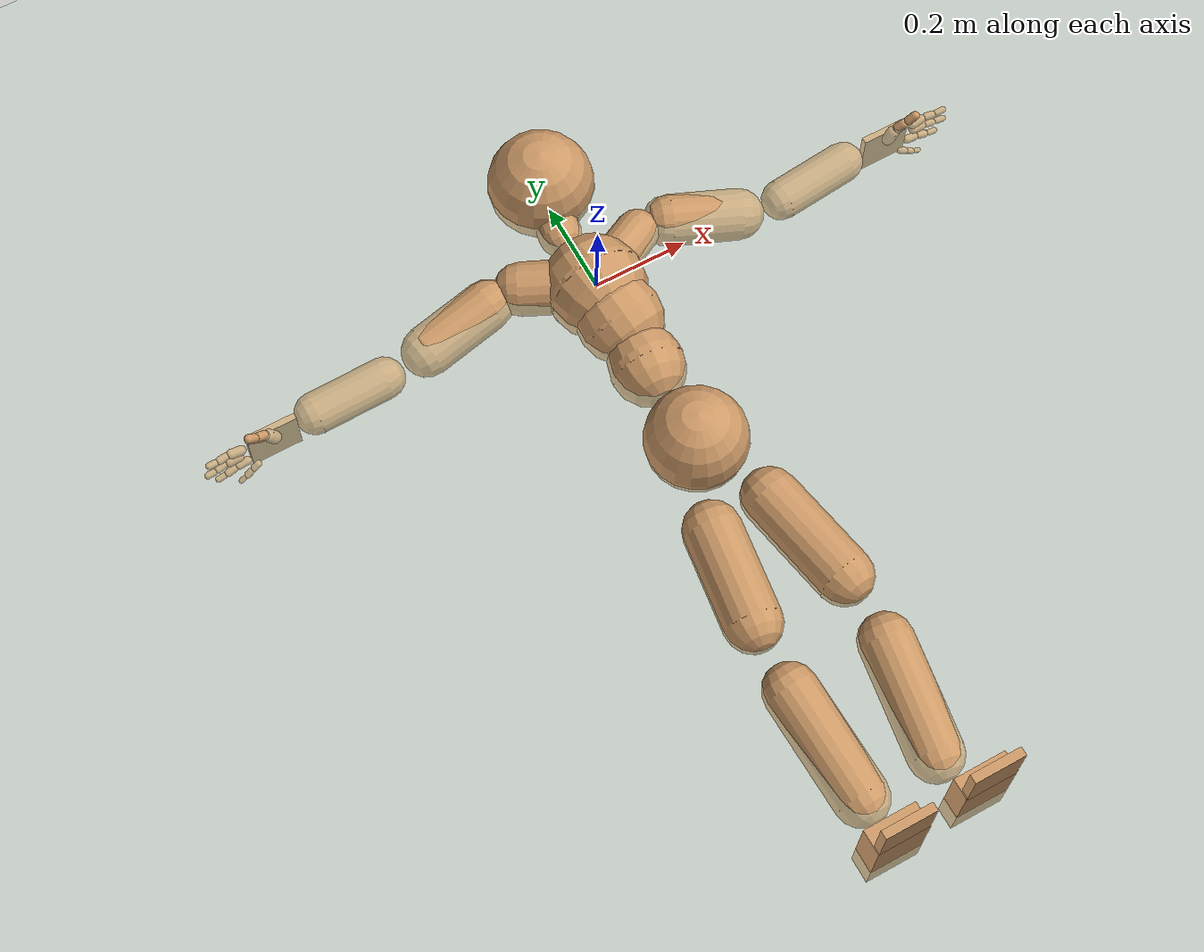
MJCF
<mujoco model="humanoid">
  <compiler coordinate="local"/>
  <default>
    <joint damping="0.0" armature="0.01" stiffness="0.0" limited="true"/>
    <geom conaffinity="1" condim="3" contype="7" margin="0.001" rgba="0.8 0.6 .4 1"/>
  </default>
  <asset>
    <texture type="skybox" builtin="gradient" rgb1=".4 .5 .6" rgb2="0 0 0" width="100" height="100"/>
    <texture builtin="flat" height="1278" mark="cross" markrgb="1 1 1" name="texgeom" random="0.01" rgb1="0.8 0.6 0.4" rgb2="0.8 0.6 0.4" type="cube" width="127"/>
    <texture builtin="checker" height="100" name="texplane" rgb1="0 0 0" rgb2="0.8 0.8 0.8" type="2d" width="100"/>
    <material name="MatPlane" reflectance="0.5" shininess="1" specular="1" texrepeat="60 60" texture="texplane"/>
    <material name="geom" texture="texgeom" texuniform="true"/>
  </asset>
  <worldbody>
    <light cutoff="100" diffuse="1 1 1" dir="-0 0 -1.3" directional="true" exponent="1" pos="0 0 1.3" specular=".1 .1 .1"/>
    <geom conaffinity="1" condim="3" name="floor" pos="0 0 0" rgba="0.8 0.9 0.8 1" size="100 100 .2" type="plane" material="MatPlane"/>
    <body name="Pelvis" pos="0.0014 -0.396 0.0108">
      <freejoint name="Pelvis"/>
      <geom type="sphere" contype="1" conaffinity="1" density="4629.6296296296305" size="0.1057" pos="0.0000 0.0000 0.0000" name="Pelvis"/>
      <body name="L_Hip" pos="0.0556 -0.0973 -0.0241">
        <joint name="L_Hip_x" type="hinge" pos="0 0 0" axis="1 0 0" stiffness="800" damping="80" armature="0.02" range="-90.0000 90.0000"/>
        <joint name="L_Hip_y" type="hinge" pos="0 0 0" axis="0 1 0" stiffness="800" damping="80" armature="0.02" range="-90.0000 90.0000"/>
        <joint name="L_Hip_z" type="hinge" pos="0 0 0" axis="0 0 1" stiffness="800" damping="80" armature="0.02" range="-90.0000 90.0000"/>
        <geom type="capsule" contype="1" conaffinity="1" density="2040.816327" fromto="0.0128 -0.0704 0.0010 0.0510 -0.2817 0.0041" size="0.0598" name="L_Hip"/>
        <body name="L_Knee" pos="0.0638 -0.3522 0.0051">
          <joint name="L_Knee_x" type="hinge" pos="0 0 0" axis="1 0 0" stiffness="800" damping="80" armature="0.02" range="-180.0000 180.0000"/>
          <joint name="L_Knee_y" type="hinge" pos="0 0 0" axis="0 1 0" stiffness="800" damping="80" armature="0.02" range="-5.6250 5.6250"/>
          <joint name="L_Knee_z" type="hinge" pos="0 0 0" axis="0 0 1" stiffness="800" damping="80" armature="0.02" range="-5.6250 5.6250"/>
          <geom type="capsule" contype="1" conaffinity="1" density="1234.567901" fromto="-0.0103 -0.0766 -0.0077 -0.0413 -0.3063 -0.0308" size="0.0558" name="L_Knee"/>
          <body name="L_Ankle" pos="-0.0517 -0.3828 -0.0385">
            <joint name="L_Ankle_x" type="hinge" pos="0 0 0" axis="1 0 0" stiffness="800" damping="80" armature="0.02" range="-90.0000 90.0000"/>
            <joint name="L_Ankle_y" type="hinge" pos="0 0 0" axis="0 1 0" stiffness="800" damping="80" armature="0.02" range="-90.0000 90.0000"/>
            <joint name="L_Ankle_z" type="hinge" pos="0 0 0" axis="0 0 1" stiffness="800" damping="80" armature="0.02" range="-90.0000 90.0000"/>
            <geom type="box" contype="1" conaffinity="1" density="1000.000127" pos="0.0225 -0.0286 0.0687" size="0.0546 0.0213 0.0973" quat="1.0000 0.0000 0.0000 0.0000" name="L_Ankle"/>
            <body name="L_Toe" pos="0.0451 -0.0573 0.1373">
              <joint name="L_Toe_x" type="hinge" pos="0 0 0" axis="1 0 0" stiffness="500" damping="50" armature="0.02" range="-90.0000 90.0000"/>
              <joint name="L_Toe_y" type="hinge" pos="0 0 0" axis="0 1 0" stiffness="500" damping="50" armature="0.02" range="-45.0000 45.0000"/>
              <joint name="L_Toe_z" type="hinge" pos="0 0 0" axis="0 0 1" stiffness="500" damping="50" armature="0.02" range="-45.0000 45.0000"/>
              <geom type="box" contype="1" conaffinity="1" density="999.999944" pos="-0.0225 0.0165 0.0697" size="0.0529 0.0092 0.0541" quat="1.0000 0.0000 0.0000 0.0000" name="L_Toe"/>
            </body>
          </body>
        </body>
      </body>
      <body name="R_Hip" pos="-0.0573 -0.1088 -0.0172">
        <joint name="R_Hip_x" type="hinge" pos="0 0 0" axis="1 0 0" stiffness="800" damping="80" armature="0.02" range="-90.0000 90.0000"/>
        <joint name="R_Hip_y" type="hinge" pos="0 0 0" axis="0 1 0" stiffness="800" damping="80" armature="0.02" range="-90.0000 90.0000"/>
        <joint name="R_Hip_z" type="hinge" pos="0 0 0" axis="0 0 1" stiffness="800" damping="80" armature="0.02" range="-90.0000 90.0000"/>
        <geom type="capsule" contype="1" conaffinity="1" density="2040.816327" fromto="-0.0093 -0.0671 -0.0006 -0.0374 -0.2686 -0.0023" size="0.0598" name="R_Hip"/>
        <body name="R_Knee" pos="-0.0467 -0.3357 -0.0029">
          <joint name="R_Knee_x" type="hinge" pos="0 0 0" axis="1 0 0" stiffness="800" damping="80" armature="0.02" range="-180.0000 180.0000"/>
          <joint name="R_Knee_y" type="hinge" pos="0 0 0" axis="0 1 0" stiffness="800" damping="80" armature="0.02" range="-5.6250 5.6250"/>
          <joint name="R_Knee_z" type="hinge" pos="0 0 0" axis="0 0 1" stiffness="800" damping="80" armature="0.02" range="-5.6250 5.6250"/>
          <geom type="capsule" contype="1" conaffinity="1" density="1234.567901" fromto="0.0042 -0.0789 -0.0074 0.0167 -0.3158 -0.0296" size="0.0555" name="R_Knee"/>
          <body name="R_Ankle" pos="0.0209 -0.3947 -0.037">
            <joint name="R_Ankle_x" type="hinge" pos="0 0 0" axis="1 0 0" stiffness="800" damping="80" armature="0.02" range="-90.0000 90.0000"/>
            <joint name="R_Ankle_y" type="hinge" pos="0 0 0" axis="0 1 0" stiffness="800" damping="80" armature="0.02" range="-90.0000 90.0000"/>
            <joint name="R_Ankle_z" type="hinge" pos="0 0 0" axis="0 0 1" stiffness="800" damping="80" armature="0.02" range="-90.0000 90.0000"/>
            <geom type="box" contype="1" conaffinity="1" density="999.999938" pos="-0.0173 -0.0283 0.0721" size="0.0546 0.0255 0.0973" quat="1.0000 0.0000 0.0000 0.0000" name="R_Ankle"/>
            <body name="R_Toe" pos="-0.0346 -0.0565 0.1442">
              <joint name="R_Toe_x" type="hinge" pos="0 0 0" axis="1 0 0" stiffness="500" damping="50" armature="0.02" range="-90.0000 90.0000"/>
              <joint name="R_Toe_y" type="hinge" pos="0 0 0" axis="0 1 0" stiffness="500" damping="50" armature="0.02" range="-45.0000 45.0000"/>
              <joint name="R_Toe_z" type="hinge" pos="0 0 0" axis="0 0 1" stiffness="500" damping="50" armature="0.02" range="-45.0000 45.0000"/>
              <geom type="box" contype="1" conaffinity="1" density="999.999926" pos="0.0173 0.0117 0.0731" size="0.0529 0.0089 0.0541" quat="1.0000 0.0000 0.0000 0.0000" name="R_Toe"/>
            </body>
          </body>
        </body>
      </body>
      <body name="Torso" pos="-0.0031 0.1177 -0.038">
        <joint name="Torso_x" type="hinge" pos="0 0 0" axis="1 0 0" stiffness="1000" damping="100" armature="0.02" range="-60.0000 60.0000"/>
        <joint name="Torso_y" type="hinge" pos="0 0 0" axis="0 1 0" stiffness="1000" damping="100" armature="0.02" range="-60.0000 60.0000"/>
        <joint name="Torso_z" type="hinge" pos="0 0 0" axis="0 0 1" stiffness="1000" damping="100" armature="0.02" range="-60.0000 60.0000"/>
        <geom type="capsule" contype="1" conaffinity="1" density="2040.816327" fromto="0.0060 0.0750 0.0006 0.0073 0.0917 0.0007" size="0.0773" name="Torso"/>
        <body name="Spine" pos="0.0133 0.1667 0.0012">
          <joint name="Spine_x" type="hinge" pos="0 0 0" axis="1 0 0" stiffness="1000" damping="100" armature="0.02" range="-60.0000 60.0000"/>
          <joint name="Spine_y" type="hinge" pos="0 0 0" axis="0 1 0" stiffness="1000" damping="100" armature="0.02" range="-60.0000 60.0000"/>
          <joint name="Spine_z" type="hinge" pos="0 0 0" axis="0 0 1" stiffness="1000" damping="100" armature="0.02" range="-60.0000 60.0000"/>
          <geom type="capsule" contype="1" conaffinity="1" density="2040.816327" fromto="-0.0046 0.0278 0.0093 -0.0056 0.0340 0.0114" size="0.0907" name="Spine"/>
          <body name="Chest" pos="-0.0102 0.0619 0.0207">
            <joint name="Chest_x" type="hinge" pos="0 0 0" axis="1 0 0" stiffness="1000" damping="100" armature="0.02" range="-60.0000 60.0000"/>
            <joint name="Chest_y" type="hinge" pos="0 0 0" axis="0 1 0" stiffness="1000" damping="100" armature="0.02" range="-60.0000 60.0000"/>
            <joint name="Chest_z" type="hinge" pos="0 0 0" axis="0 0 1" stiffness="1000" damping="100" armature="0.02" range="-60.0000 60.0000"/>
            <geom type="capsule" contype="1" conaffinity="1" density="2040.816327" fromto="-0.0020 0.0489 -0.0057 -0.0025 0.0598 -0.0069" size="0.1049" name="Chest"/>
            <body name="Neck" pos="-0.0093 0.1693 -0.0243">
              <joint name="Neck_x" type="hinge" pos="0 0 0" axis="1 0 0" stiffness="500" damping="50" armature="0.02" range="-180.0000 180.0000"/>
              <joint name="Neck_y" type="hinge" pos="0 0 0" axis="0 1 0" stiffness="500" damping="50" armature="0.02" range="-180.0000 180.0000"/>
              <joint name="Neck_z" type="hinge" pos="0 0 0" axis="0 0 1" stiffness="500" damping="50" armature="0.02" range="-180.0000 180.0000"/>
              <geom type="capsule" contype="1" conaffinity="1" density="1000" fromto="0.0047 0.0297 0.0047 0.0189 0.1186 0.0187" size="0.0451" name="Neck"/>
              <body name="Head" pos="0.0236 0.1483 0.0233">
                <joint name="Head_x" type="hinge" pos="0 0 0" axis="1 0 0" stiffness="500" damping="50" armature="0.02" range="-90.0000 90.0000"/>
                <joint name="Head_y" type="hinge" pos="0 0 0" axis="0 1 0" stiffness="500" damping="50" armature="0.02" range="-90.0000 90.0000"/>
                <joint name="Head_z" type="hinge" pos="0 0 0" axis="0 0 1" stiffness="500" damping="50" armature="0.02" range="-90.0000 90.0000"/>
                <geom type="sphere" contype="1" conaffinity="1" density="1000" size="0.1115" pos="0.0000 0.0000 0.0000" name="Head"/>
              </body>
            </body>
            <body name="L_Thorax" pos="0.0377 0.0779 -0.0048">
              <joint name="L_Thorax_x" type="hinge" pos="0 0 0" axis="1 0 0" stiffness="500" damping="50" armature="0.02" range="-180.0000 180.0000"/>
              <joint name="L_Thorax_y" type="hinge" pos="0 0 0" axis="0 1 0" stiffness="500" damping="50" armature="0.02" range="-180.0000 180.0000"/>
              <joint name="L_Thorax_z" type="hinge" pos="0 0 0" axis="0 0 1" stiffness="500" damping="50" armature="0.02" range="-180.0000 180.0000"/>
              <geom type="capsule" contype="1" conaffinity="1" density="1000" fromto="0.0250 0.0135 -0.0041 0.1001 0.0541 -0.0163" size="0.0468" name="L_Thorax"/>
              <body name="L_Shoulder" pos="0.1252 0.0676 -0.0204">
                <joint name="L_Shoulder_x" type="hinge" pos="0 0 0" axis="1 0 0" stiffness="500" damping="50" armature="0.02" range="-180.0000 180.0000"/>
                <joint name="L_Shoulder_y" type="hinge" pos="0 0 0" axis="0 1 0" stiffness="500" damping="50" armature="0.02" range="-180.0000 180.0000"/>
                <joint name="L_Shoulder_z" type="hinge" pos="0 0 0" axis="0 0 1" stiffness="500" damping="50" armature="0.02" range="-180.0000 180.0000"/>
                <geom type="capsule" contype="1" conaffinity="1" density="1000" fromto="0.0474 -0.0151 -0.0081 0.1897 -0.0604 -0.0324" size="0.054" name="L_Shoulder"/>
                <body name="L_Elbow" pos="0.2371 -0.0756 -0.0405">
                  <joint name="L_Elbow_x" type="hinge" pos="0 0 0" axis="1 0 0" stiffness="500" damping="50" armature="0.02" range="-720.0000 720.0000"/>
                  <joint name="L_Elbow_y" type="hinge" pos="0 0 0" axis="0 1 0" stiffness="500" damping="50" armature="0.02" range="-720.0000 720.0000"/>
                  <joint name="L_Elbow_z" type="hinge" pos="0 0 0" axis="0 0 1" stiffness="500" damping="50" armature="0.02" range="-720.0000 720.0000"/>
                  <geom type="capsule" contype="1" conaffinity="1" density="1000" fromto="0.0529 0.0053 0.0001 0.2118 0.0210 0.0005" size="0.0428" name="L_Elbow"/>
                  <body name="L_Wrist" pos="0.2647 0.0263 0.0006">
                    <joint name="L_Wrist_x" type="hinge" pos="0 0 0" axis="1 0 0" stiffness="300" damping="30" armature="0.02" range="-180.0000 180.0000"/>
                    <joint name="L_Wrist_y" type="hinge" pos="0 0 0" axis="0 1 0" stiffness="300" damping="30" armature="0.02" range="-180.0000 180.0000"/>
                    <joint name="L_Wrist_z" type="hinge" pos="0 0 0" axis="0 0 1" stiffness="300" damping="30" armature="0.02" range="-180.0000 180.0000"/>
                    <geom type="box" contype="1" conaffinity="1" density="2541.500099" pos="0.0462 -0.0059 -0.0029" size="0.0524 0.0066 0.0521" quat="1.0000 0.0000 0.0000 0.0000" name="L_Wrist"/>
                    <body name="L_Index1" pos="0.1091 -0.0089 0.0231">
                      <joint name="L_Index1_x" type="hinge" pos="0 0 0" axis="1 0 0" stiffness="100" damping="10" armature="0.02" range="-180.0000 180.0000"/>
                      <joint name="L_Index1_y" type="hinge" pos="0 0 0" axis="0 1 0" stiffness="100" damping="10" armature="0.02" range="-180.0000 180.0000"/>
                      <joint name="L_Index1_z" type="hinge" pos="0 0 0" axis="0 0 1" stiffness="100" damping="10" armature="0.02" range="-180.0000 180.0000"/>
                      <geom type="capsule" contype="1" conaffinity="1" density="1000" fromto="0.0069 0.0004 0.0008 0.0277 0.0015 0.0031" size="0.0101" name="L_Index1"/>
                      <body name="L_Index2" pos="0.0346 0.0018 0.0039">
                        <joint name="L_Index2_x" type="hinge" pos="0 0 0" axis="1 0 0" stiffness="100" damping="10" armature="0.02" range="-180.0000 180.0000"/>
                        <joint name="L_Index2_y" type="hinge" pos="0 0 0" axis="0 1 0" stiffness="100" damping="10" armature="0.02" range="-180.0000 180.0000"/>
                        <joint name="L_Index2_z" type="hinge" pos="0 0 0" axis="0 0 1" stiffness="100" damping="10" armature="0.02" range="-180.0000 180.0000"/>
                        <geom type="capsule" contype="1" conaffinity="1" density="1000" fromto="0.0048 -0.0006 -0.0001 0.0194 -0.0023 -0.0004" size="0.0082" name="L_Index2"/>
                        <body name="L_Index3" pos="0.0242 -0.0029 -0.0005">
                          <joint name="L_Index3_x" type="hinge" pos="0 0 0" axis="1 0 0" stiffness="100" damping="10" armature="0.02" range="-180.0000 180.0000"/>
                          <joint name="L_Index3_y" type="hinge" pos="0 0 0" axis="0 1 0" stiffness="100" damping="10" armature="0.02" range="-180.0000 180.0000"/>
                          <joint name="L_Index3_z" type="hinge" pos="0 0 0" axis="0 0 1" stiffness="100" damping="10" armature="0.02" range="-180.0000 180.0000"/>
                          <geom type="capsule" contype="1" conaffinity="1" density="1000" fromto="0.0052 -0.0002 0.0003 0.0210 -0.0007 0.0012" size="0.007" name="L_Index3"/>
                        </body>
                      </body>
                    </body>
                    <body name="L_Middle1" pos="0.1173 -0.0057 -0.0029">
                      <joint name="L_Middle1_x" type="hinge" pos="0 0 0" axis="1 0 0" stiffness="100" damping="10" armature="0.02" range="-180.0000 180.0000"/>
                      <joint name="L_Middle1_y" type="hinge" pos="0 0 0" axis="0 1 0" stiffness="100" damping="10" armature="0.02" range="-180.0000 180.0000"/>
                      <joint name="L_Middle1_z" type="hinge" pos="0 0 0" axis="0 0 1" stiffness="100" damping="10" armature="0.02" range="-180.0000 180.0000"/>
                      <geom type="capsule" contype="1" conaffinity="1" density="1000" fromto="0.0066 0.0001 -0.0009 0.0264 0.0005 -0.0035" size="0.0105" name="L_Middle1"/>
                      <body name="L_Middle2" pos="0.033 0.0006 -0.0044">
                        <joint name="L_Middle2_x" type="hinge" pos="0 0 0" axis="1 0 0" stiffness="100" damping="10" armature="0.02" range="-180.0000 180.0000"/>
                        <joint name="L_Middle2_y" type="hinge" pos="0 0 0" axis="0 1 0" stiffness="100" damping="10" armature="0.02" range="-180.0000 180.0000"/>
                        <joint name="L_Middle2_z" type="hinge" pos="0 0 0" axis="0 0 1" stiffness="100" damping="10" armature="0.02" range="-180.0000 180.0000"/>
                        <geom type="capsule" contype="1" conaffinity="1" density="1000" fromto="0.0050 -0.0005 -0.0009 0.0201 -0.0021 -0.0037" size="0.0078" name="L_Middle2"/>
                        <body name="L_Middle3" pos="0.0251 -0.0026 -0.0047">
                          <joint name="L_Middle3_x" type="hinge" pos="0 0 0" axis="1 0 0" stiffness="100" damping="10" armature="0.02" range="-180.0000 180.0000"/>
                          <joint name="L_Middle3_y" type="hinge" pos="0 0 0" axis="0 1 0" stiffness="100" damping="10" armature="0.02" range="-180.0000 180.0000"/>
                          <joint name="L_Middle3_z" type="hinge" pos="0 0 0" axis="0 0 1" stiffness="100" damping="10" armature="0.02" range="-180.0000 180.0000"/>
                          <geom type="capsule" contype="1" conaffinity="1" density="1000" fromto="0.0054 -0.0001 -0.0005 0.0217 -0.0005 -0.0021" size="0.0068" name="L_Middle3"/>
                        </body>
                      </body>
                    </body>
                    <body name="L_Pinky1" pos="0.0892 -0.0148 -0.0489">
                      <joint name="L_Pinky1_x" type="hinge" pos="0 0 0" axis="1 0 0" stiffness="100" damping="10" armature="0.02" range="-180.0000 180.0000"/>
                      <joint name="L_Pinky1_y" type="hinge" pos="0 0 0" axis="0 1 0" stiffness="100" damping="10" armature="0.02" range="-180.0000 180.0000"/>
                      <joint name="L_Pinky1_z" type="hinge" pos="0 0 0" axis="0 0 1" stiffness="100" damping="10" armature="0.02" range="-180.0000 180.0000"/>
                      <geom type="capsule" contype="1" conaffinity="1" density="1000" fromto="0.0035 -0.0004 -0.0025 0.0140 -0.0016 -0.0099" size="0.0075" name="L_Pinky1"/>
                      <body name="L_Pinky2" pos="0.0175 -0.002 -0.0124">
                        <joint name="L_Pinky2_x" type="hinge" pos="0 0 0" axis="1 0 0" stiffness="100" damping="10" armature="0.02" range="-180.0000 180.0000"/>
                        <joint name="L_Pinky2_y" type="hinge" pos="0 0 0" axis="0 1 0" stiffness="100" damping="10" armature="0.02" range="-180.0000 180.0000"/>
                        <joint name="L_Pinky2_z" type="hinge" pos="0 0 0" axis="0 0 1" stiffness="100" damping="10" armature="0.02" range="-180.0000 180.0000"/>
                        <geom type="capsule" contype="1" conaffinity="1" density="1000" fromto="0.0034 -0.0005 -0.0023 0.0137 -0.0019 -0.0092" size="0.0071" name="L_Pinky2"/>
                        <body name="L_Pinky3" pos="0.0171 -0.0023 -0.0115">
                          <joint name="L_Pinky3_x" type="hinge" pos="0 0 0" axis="1 0 0" stiffness="100" damping="10" armature="0.02" range="-180.0000 180.0000"/>
                          <joint name="L_Pinky3_y" type="hinge" pos="0 0 0" axis="0 1 0" stiffness="100" damping="10" armature="0.02" range="-180.0000 180.0000"/>
                          <joint name="L_Pinky3_z" type="hinge" pos="0 0 0" axis="0 0 1" stiffness="100" damping="10" armature="0.02" range="-180.0000 180.0000"/>
                          <geom type="capsule" contype="1" conaffinity="1" density="1000" fromto="0.0038 -0.0001 -0.0019 0.0153 -0.0003 -0.0076" size="0.0053" name="L_Pinky3"/>
                        </body>
                      </body>
                    </body>
                    <body name="L_Ring1" pos="0.1039 -0.0086 -0.0298">
                      <joint name="L_Ring1_x" type="hinge" pos="0 0 0" axis="1 0 0" stiffness="100" damping="10" armature="0.02" range="-180.0000 180.0000"/>
                      <joint name="L_Ring1_y" type="hinge" pos="0 0 0" axis="0 1 0" stiffness="100" damping="10" armature="0.02" range="-180.0000 180.0000"/>
                      <joint name="L_Ring1_z" type="hinge" pos="0 0 0" axis="0 0 1" stiffness="100" damping="10" armature="0.02" range="-180.0000 180.0000"/>
                      <geom type="capsule" contype="1" conaffinity="1" density="1000" fromto="0.0061 0.0002 -0.0010 0.0244 0.0007 -0.0040" size="0.0089" name="L_Ring1"/>
                      <body name="L_Ring2" pos="0.0305 0.0009 -0.0051">
                        <joint name="L_Ring2_x" type="hinge" pos="0 0 0" axis="1 0 0" stiffness="100" damping="10" armature="0.02" range="-180.0000 180.0000"/>
                        <joint name="L_Ring2_y" type="hinge" pos="0 0 0" axis="0 1 0" stiffness="100" damping="10" armature="0.02" range="-180.0000 180.0000"/>
                        <joint name="L_Ring2_z" type="hinge" pos="0 0 0" axis="0 0 1" stiffness="100" damping="10" armature="0.02" range="-180.0000 180.0000"/>
                        <geom type="capsule" contype="1" conaffinity="1" density="1000" fromto="0.0049 -0.0005 -0.0014 0.0196 -0.0019 -0.0056" size="0.0082" name="L_Ring2"/>
                        <body name="L_Ring3" pos="0.0245 -0.0023 -0.007">
                          <joint name="L_Ring3_x" type="hinge" pos="0 0 0" axis="1 0 0" stiffness="100" damping="10" armature="0.02" range="-180.0000 180.0000"/>
                          <joint name="L_Ring3_y" type="hinge" pos="0 0 0" axis="0 1 0" stiffness="100" damping="10" armature="0.02" range="-180.0000 180.0000"/>
                          <joint name="L_Ring3_z" type="hinge" pos="0 0 0" axis="0 0 1" stiffness="100" damping="10" armature="0.02" range="-180.0000 180.0000"/>
                          <geom type="capsule" contype="1" conaffinity="1" density="1000" fromto="0.0053 -0.0001 -0.0010 0.0212 -0.0003 -0.0040" size="0.0064" name="L_Ring3"/>
                        </body>
                      </body>
                    </body>
                    <body name="L_Thumb1" pos="0.0424 -0.0205 0.0298">
                      <joint name="L_Thumb1_x" type="hinge" pos="0 0 0" axis="1 0 0" stiffness="100" damping="10" armature="0.02" range="-180.0000 180.0000"/>
                      <joint name="L_Thumb1_y" type="hinge" pos="0 0 0" axis="0 1 0" stiffness="100" damping="10" armature="0.02" range="-180.0000 180.0000"/>
                      <joint name="L_Thumb1_z" type="hinge" pos="0 0 0" axis="0 0 1" stiffness="100" damping="10" armature="0.02" range="-180.0000 180.0000"/>
                      <geom type="capsule" contype="1" conaffinity="1" density="1000" fromto="0.0036 0.0004 0.0057 0.0143 0.0016 0.0227" size="0.0133" name="L_Thumb1"/>
                      <body name="L_Thumb2" pos="0.0179 0.002 0.0283">
                        <joint name="L_Thumb2_x" type="hinge" pos="0 0 0" axis="1 0 0" stiffness="100" damping="10" armature="0.02" range="-180.0000 180.0000"/>
                        <joint name="L_Thumb2_y" type="hinge" pos="0 0 0" axis="0 1 0" stiffness="100" damping="10" armature="0.02" range="-180.0000 180.0000"/>
                        <joint name="L_Thumb2_z" type="hinge" pos="0 0 0" axis="0 0 1" stiffness="100" damping="10" armature="0.02" range="-180.0000 180.0000"/>
                        <geom type="capsule" contype="1" conaffinity="1" density="1000" fromto="0.0043 -0.0011 0.0035 0.0172 -0.0043 0.0141" size="0.0106" name="L_Thumb2"/>
                        <body name="L_Thumb3" pos="0.0215 -0.0053 0.0176">
                          <joint name="L_Thumb3_x" type="hinge" pos="0 0 0" axis="1 0 0" stiffness="100" damping="10" armature="0.02" range="-180.0000 180.0000"/>
                          <joint name="L_Thumb3_y" type="hinge" pos="0 0 0" axis="0 1 0" stiffness="100" damping="10" armature="0.02" range="-180.0000 180.0000"/>
                          <joint name="L_Thumb3_z" type="hinge" pos="0 0 0" axis="0 0 1" stiffness="100" damping="10" armature="0.02" range="-180.0000 180.0000"/>
                          <geom type="capsule" contype="1" conaffinity="1" density="1000" fromto="0.0047 -0.0007 0.0039 0.0188 -0.0027 0.0157" size="0.0096" name="L_Thumb3"/>
                        </body>
                      </body>
                    </body>
                  </body>
                </body>
              </body>
            </body>
            <body name="R_Thorax" pos="-0.0419 0.0789 -0.0087">
              <joint name="R_Thorax_x" type="hinge" pos="0 0 0" axis="1 0 0" stiffness="500" damping="50" armature="0.02" range="-180.0000 180.0000"/>
              <joint name="R_Thorax_y" type="hinge" pos="0 0 0" axis="0 1 0" stiffness="500" damping="50" armature="0.02" range="-180.0000 180.0000"/>
              <joint name="R_Thorax_z" type="hinge" pos="0 0 0" axis="0 0 1" stiffness="500" damping="50" armature="0.02" range="-180.0000 180.0000"/>
              <geom type="capsule" contype="1" conaffinity="1" density="1000" fromto="-0.0233 0.0127 -0.0031 -0.0931 0.0506 -0.0124" size="0.0557" name="R_Thorax"/>
              <body name="R_Shoulder" pos="-0.1164 0.0633 -0.0154">
                <joint name="R_Shoulder_x" type="hinge" pos="0 0 0" axis="1 0 0" stiffness="500" damping="50" armature="0.02" range="-180.0000 180.0000"/>
                <joint name="R_Shoulder_y" type="hinge" pos="0 0 0" axis="0 1 0" stiffness="500" damping="50" armature="0.02" range="-180.0000 180.0000"/>
                <joint name="R_Shoulder_z" type="hinge" pos="0 0 0" axis="0 0 1" stiffness="500" damping="50" armature="0.02" range="-180.0000 180.0000"/>
                <geom type="capsule" contype="1" conaffinity="1" density="1000" fromto="-0.0506 -0.0084 -0.0059 -0.2023 -0.0335 -0.0235" size="0.0533" name="R_Shoulder"/>
                <body name="R_Elbow" pos="-0.2529 -0.0419 -0.0294">
                  <joint name="R_Elbow_x" type="hinge" pos="0 0 0" axis="1 0 0" stiffness="500" damping="50" armature="0.02" range="-720.0000 720.0000"/>
                  <joint name="R_Elbow_y" type="hinge" pos="0 0 0" axis="0 1 0" stiffness="500" damping="50" armature="0.02" range="-720.0000 720.0000"/>
                  <joint name="R_Elbow_z" type="hinge" pos="0 0 0" axis="0 0 1" stiffness="500" damping="50" armature="0.02" range="-720.0000 720.0000"/>
                  <geom type="capsule" contype="1" conaffinity="1" density="1000" fromto="-0.0514 -0.0001 -0.0021 -0.2055 -0.0003 -0.0083" size="0.0437" name="R_Elbow"/>
                  <body name="R_Wrist" pos="-0.2569 -0.0004 -0.0104">
                    <joint name="R_Wrist_x" type="hinge" pos="0 0 0" axis="1 0 0" stiffness="300" damping="30" armature="0.02" range="-180.0000 180.0000"/>
                    <joint name="R_Wrist_y" type="hinge" pos="0 0 0" axis="0 1 0" stiffness="300" damping="30" armature="0.02" range="-180.0000 180.0000"/>
                    <joint name="R_Wrist_z" type="hinge" pos="0 0 0" axis="0 0 1" stiffness="300" damping="30" armature="0.02" range="-180.0000 180.0000"/>
                    <geom type="box" contype="1" conaffinity="1" density="2541.49995" pos="-0.0459 -0.0077 -0.0035" size="0.0539 0.0067 0.0521" quat="1.0000 0.0000 0.0000 0.0000" name="R_Wrist"/>
                    <body name="R_Index1" pos="-0.1085 -0.0126 0.0218">
                      <joint name="R_Index1_x" type="hinge" pos="0 0 0" axis="1 0 0" stiffness="100" damping="10" armature="0.02" range="-180.0000 180.0000"/>
                      <joint name="R_Index1_y" type="hinge" pos="0 0 0" axis="0 1 0" stiffness="100" damping="10" armature="0.02" range="-180.0000 180.0000"/>
                      <joint name="R_Index1_z" type="hinge" pos="0 0 0" axis="0 0 1" stiffness="100" damping="10" armature="0.02" range="-180.0000 180.0000"/>
                      <geom type="capsule" contype="1" conaffinity="1" density="1000" fromto="-0.0069 0.0004 0.0008 -0.0277 0.0015 0.0031" size="0.0102" name="R_Index1"/>
                      <body name="R_Index2" pos="-0.0346 0.0018 0.0039">
                        <joint name="R_Index2_x" type="hinge" pos="0 0 0" axis="1 0 0" stiffness="100" damping="10" armature="0.02" range="-180.0000 180.0000"/>
                        <joint name="R_Index2_y" type="hinge" pos="0 0 0" axis="0 1 0" stiffness="100" damping="10" armature="0.02" range="-180.0000 180.0000"/>
                        <joint name="R_Index2_z" type="hinge" pos="0 0 0" axis="0 0 1" stiffness="100" damping="10" armature="0.02" range="-180.0000 180.0000"/>
                        <geom type="capsule" contype="1" conaffinity="1" density="1000" fromto="-0.0048 -0.0006 -0.0001 -0.0194 -0.0023 -0.0004" size="0.0082" name="R_Index2"/>
                        <body name="R_Index3" pos="-0.0242 -0.0029 -0.0005">
                          <joint name="R_Index3_x" type="hinge" pos="0 0 0" axis="1 0 0" stiffness="100" damping="10" armature="0.02" range="-180.0000 180.0000"/>
                          <joint name="R_Index3_y" type="hinge" pos="0 0 0" axis="0 1 0" stiffness="100" damping="10" armature="0.02" range="-180.0000 180.0000"/>
                          <joint name="R_Index3_z" type="hinge" pos="0 0 0" axis="0 0 1" stiffness="100" damping="10" armature="0.02" range="-180.0000 180.0000"/>
                          <geom type="capsule" contype="1" conaffinity="1" density="1000" fromto="-0.0044 -0.0002 0.0003 -0.0178 -0.0007 0.0012" size="0.0073" name="R_Index3"/>
                        </body>
                      </body>
                    </body>
                    <body name="R_Middle1" pos="-0.1168 -0.0094 -0.0043">
                      <joint name="R_Middle1_x" type="hinge" pos="0 0 0" axis="1 0 0" stiffness="100" damping="10" armature="0.02" range="-180.0000 180.0000"/>
                      <joint name="R_Middle1_y" type="hinge" pos="0 0 0" axis="0 1 0" stiffness="100" damping="10" armature="0.02" range="-180.0000 180.0000"/>
                      <joint name="R_Middle1_z" type="hinge" pos="0 0 0" axis="0 0 1" stiffness="100" damping="10" armature="0.02" range="-180.0000 180.0000"/>
                      <geom type="capsule" contype="1" conaffinity="1" density="1000" fromto="-0.0066 0.0001 -0.0009 -0.0264 0.0005 -0.0035" size="0.0105" name="R_Middle1"/>
                      <body name="R_Middle2" pos="-0.033 0.0006 -0.0044">
                        <joint name="R_Middle2_x" type="hinge" pos="0 0 0" axis="1 0 0" stiffness="100" damping="10" armature="0.02" range="-180.0000 180.0000"/>
                        <joint name="R_Middle2_y" type="hinge" pos="0 0 0" axis="0 1 0" stiffness="100" damping="10" armature="0.02" range="-180.0000 180.0000"/>
                        <joint name="R_Middle2_z" type="hinge" pos="0 0 0" axis="0 0 1" stiffness="100" damping="10" armature="0.02" range="-180.0000 180.0000"/>
                        <geom type="capsule" contype="1" conaffinity="1" density="1000" fromto="-0.0050 -0.0005 -0.0009 -0.0201 -0.0021 -0.0037" size="0.0078" name="R_Middle2"/>
                        <body name="R_Middle3" pos="-0.0251 -0.0026 -0.0047">
                          <joint name="R_Middle3_x" type="hinge" pos="0 0 0" axis="1 0 0" stiffness="100" damping="10" armature="0.02" range="-180.0000 180.0000"/>
                          <joint name="R_Middle3_y" type="hinge" pos="0 0 0" axis="0 1 0" stiffness="100" damping="10" armature="0.02" range="-180.0000 180.0000"/>
                          <joint name="R_Middle3_z" type="hinge" pos="0 0 0" axis="0 0 1" stiffness="100" damping="10" armature="0.02" range="-180.0000 180.0000"/>
                          <geom type="capsule" contype="1" conaffinity="1" density="1000" fromto="-0.0046 -0.0001 -0.0005 -0.0185 -0.0005 -0.0021" size="0.0071" name="R_Middle3"/>
                        </body>
                      </body>
                    </body>
                    <body name="R_Pinky1" pos="-0.0886 -0.0184 -0.0502">
                      <joint name="R_Pinky1_x" type="hinge" pos="0 0 0" axis="1 0 0" stiffness="100" damping="10" armature="0.02" range="-180.0000 180.0000"/>
                      <joint name="R_Pinky1_y" type="hinge" pos="0 0 0" axis="0 1 0" stiffness="100" damping="10" armature="0.02" range="-180.0000 180.0000"/>
                      <joint name="R_Pinky1_z" type="hinge" pos="0 0 0" axis="0 0 1" stiffness="100" damping="10" armature="0.02" range="-180.0000 180.0000"/>
                      <geom type="capsule" contype="1" conaffinity="1" density="1000" fromto="-0.0035 -0.0004 -0.0025 -0.0140 -0.0016 -0.0099" size="0.0075" name="R_Pinky1"/>
                      <body name="R_Pinky2" pos="-0.0175 -0.002 -0.0124">
                        <joint name="R_Pinky2_x" type="hinge" pos="0 0 0" axis="1 0 0" stiffness="100" damping="10" armature="0.02" range="-180.0000 180.0000"/>
                        <joint name="R_Pinky2_y" type="hinge" pos="0 0 0" axis="0 1 0" stiffness="100" damping="10" armature="0.02" range="-180.0000 180.0000"/>
                        <joint name="R_Pinky2_z" type="hinge" pos="0 0 0" axis="0 0 1" stiffness="100" damping="10" armature="0.02" range="-180.0000 180.0000"/>
                        <geom type="capsule" contype="1" conaffinity="1" density="1000" fromto="-0.0034 -0.0005 -0.0023 -0.0137 -0.0019 -0.0092" size="0.0071" name="R_Pinky2"/>
                        <body name="R_Pinky3" pos="-0.0171 -0.0023 -0.0115">
                          <joint name="R_Pinky3_x" type="hinge" pos="0 0 0" axis="1 0 0" stiffness="100" damping="10" armature="0.02" range="-180.0000 180.0000"/>
                          <joint name="R_Pinky3_y" type="hinge" pos="0 0 0" axis="0 1 0" stiffness="100" damping="10" armature="0.02" range="-180.0000 180.0000"/>
                          <joint name="R_Pinky3_z" type="hinge" pos="0 0 0" axis="0 0 1" stiffness="100" damping="10" armature="0.02" range="-180.0000 180.0000"/>
                          <geom type="capsule" contype="1" conaffinity="1" density="1000" fromto="-0.0030 -0.0001 -0.0019 -0.0121 -0.0003 -0.0076" size="0.0056" name="R_Pinky3"/>
                        </body>
                      </body>
                    </body>
                    <body name="R_Ring1" pos="-0.1034 -0.0123 -0.0312">
                      <joint name="R_Ring1_x" type="hinge" pos="0 0 0" axis="1 0 0" stiffness="100" damping="10" armature="0.02" range="-180.0000 180.0000"/>
                      <joint name="R_Ring1_y" type="hinge" pos="0 0 0" axis="0 1 0" stiffness="100" damping="10" armature="0.02" range="-180.0000 180.0000"/>
                      <joint name="R_Ring1_z" type="hinge" pos="0 0 0" axis="0 0 1" stiffness="100" damping="10" armature="0.02" range="-180.0000 180.0000"/>
                      <geom type="capsule" contype="1" conaffinity="1" density="1000" fromto="-0.0061 0.0002 -0.0010 -0.0244 0.0007 -0.0040" size="0.0089" name="R_Ring1"/>
                      <body name="R_Ring2" pos="-0.0305 0.0009 -0.0051">
                        <joint name="R_Ring2_x" type="hinge" pos="0 0 0" axis="1 0 0" stiffness="100" damping="10" armature="0.02" range="-180.0000 180.0000"/>
                        <joint name="R_Ring2_y" type="hinge" pos="0 0 0" axis="0 1 0" stiffness="100" damping="10" armature="0.02" range="-180.0000 180.0000"/>
                        <joint name="R_Ring2_z" type="hinge" pos="0 0 0" axis="0 0 1" stiffness="100" damping="10" armature="0.02" range="-180.0000 180.0000"/>
                        <geom type="capsule" contype="1" conaffinity="1" density="1000" fromto="-0.0049 -0.0005 -0.0014 -0.0196 -0.0019 -0.0056" size="0.0082" name="R_Ring2"/>
                        <body name="R_Ring3" pos="-0.0245 -0.0023 -0.007">
                          <joint name="R_Ring3_x" type="hinge" pos="0 0 0" axis="1 0 0" stiffness="100" damping="10" armature="0.02" range="-180.0000 180.0000"/>
                          <joint name="R_Ring3_y" type="hinge" pos="0 0 0" axis="0 1 0" stiffness="100" damping="10" armature="0.02" range="-180.0000 180.0000"/>
                          <joint name="R_Ring3_z" type="hinge" pos="0 0 0" axis="0 0 1" stiffness="100" damping="10" armature="0.02" range="-180.0000 180.0000"/>
                          <geom type="capsule" contype="1" conaffinity="1" density="1000" fromto="-0.0045 -0.0001 -0.0010 -0.0180 -0.0003 -0.0040" size="0.0066" name="R_Ring3"/>
                        </body>
                      </body>
                    </body>
                    <body name="R_Thumb1" pos="-0.0418 -0.0242 0.0284">
                      <joint name="R_Thumb1_x" type="hinge" pos="0 0 0" axis="1 0 0" stiffness="100" damping="10" armature="0.02" range="-180.0000 180.0000"/>
                      <joint name="R_Thumb1_y" type="hinge" pos="0 0 0" axis="0 1 0" stiffness="100" damping="10" armature="0.02" range="-180.0000 180.0000"/>
                      <joint name="R_Thumb1_z" type="hinge" pos="0 0 0" axis="0 0 1" stiffness="100" damping="10" armature="0.02" range="-180.0000 180.0000"/>
                      <geom type="capsule" contype="1" conaffinity="1" density="1000" fromto="-0.0036 0.0004 0.0057 -0.0143 0.0016 0.0227" size="0.0133" name="R_Thumb1"/>
                      <body name="R_Thumb2" pos="-0.0179 0.002 0.0283">
                        <joint name="R_Thumb2_x" type="hinge" pos="0 0 0" axis="1 0 0" stiffness="100" damping="10" armature="0.02" range="-180.0000 180.0000"/>
                        <joint name="R_Thumb2_y" type="hinge" pos="0 0 0" axis="0 1 0" stiffness="100" damping="10" armature="0.02" range="-180.0000 180.0000"/>
                        <joint name="R_Thumb2_z" type="hinge" pos="0 0 0" axis="0 0 1" stiffness="100" damping="10" armature="0.02" range="-180.0000 180.0000"/>
                        <geom type="capsule" contype="1" conaffinity="1" density="1000" fromto="-0.0043 -0.0011 0.0035 -0.0172 -0.0043 0.0141" size="0.0106" name="R_Thumb2"/>
                        <body name="R_Thumb3" pos="-0.0215 -0.0053 0.0176">
                          <joint name="R_Thumb3_x" type="hinge" pos="0 0 0" axis="1 0 0" stiffness="100" damping="10" armature="0.02" range="-180.0000 180.0000"/>
                          <joint name="R_Thumb3_y" type="hinge" pos="0 0 0" axis="0 1 0" stiffness="100" damping="10" armature="0.02" range="-180.0000 180.0000"/>
                          <joint name="R_Thumb3_z" type="hinge" pos="0 0 0" axis="0 0 1" stiffness="100" damping="10" armature="0.02" range="-180.0000 180.0000"/>
                          <geom type="capsule" contype="1" conaffinity="1" density="1000" fromto="-0.0039 -0.0007 0.0039 -0.0156 -0.0027 0.0157" size="0.0098" name="R_Thumb3"/>
                        </body>
                      </body>
                    </body>
                  </body>
                </body>
              </body>
            </body>
          </body>
        </body>
      </body>
    </body>
  </worldbody>
  <actuator>
    <motor name="L_Hip_x" joint="L_Hip_x" gear="500"/>
    <motor name="L_Hip_y" joint="L_Hip_y" gear="500"/>
    <motor name="L_Hip_z" joint="L_Hip_z" gear="500"/>
    <motor name="L_Knee_x" joint="L_Knee_x" gear="500"/>
    <motor name="L_Knee_y" joint="L_Knee_y" gear="500"/>
    <motor name="L_Knee_z" joint="L_Knee_z" gear="500"/>
    <motor name="L_Ankle_x" joint="L_Ankle_x" gear="500"/>
    <motor name="L_Ankle_y" joint="L_Ankle_y" gear="500"/>
    <motor name="L_Ankle_z" joint="L_Ankle_z" gear="500"/>
    <motor name="L_Toe_x" joint="L_Toe_x" gear="500"/>
    <motor name="L_Toe_y" joint="L_Toe_y" gear="500"/>
    <motor name="L_Toe_z" joint="L_Toe_z" gear="500"/>
    <motor name="R_Hip_x" joint="R_Hip_x" gear="500"/>
    <motor name="R_Hip_y" joint="R_Hip_y" gear="500"/>
    <motor name="R_Hip_z" joint="R_Hip_z" gear="500"/>
    <motor name="R_Knee_x" joint="R_Knee_x" gear="500"/>
    <motor name="R_Knee_y" joint="R_Knee_y" gear="500"/>
    <motor name="R_Knee_z" joint="R_Knee_z" gear="500"/>
    <motor name="R_Ankle_x" joint="R_Ankle_x" gear="500"/>
    <motor name="R_Ankle_y" joint="R_Ankle_y" gear="500"/>
    <motor name="R_Ankle_z" joint="R_Ankle_z" gear="500"/>
    <motor name="R_Toe_x" joint="R_Toe_x" gear="500"/>
    <motor name="R_Toe_y" joint="R_Toe_y" gear="500"/>
    <motor name="R_Toe_z" joint="R_Toe_z" gear="500"/>
    <motor name="Torso_x" joint="Torso_x" gear="500"/>
    <motor name="Torso_y" joint="Torso_y" gear="500"/>
    <motor name="Torso_z" joint="Torso_z" gear="500"/>
    <motor name="Spine_x" joint="Spine_x" gear="500"/>
    <motor name="Spine_y" joint="Spine_y" gear="500"/>
    <motor name="Spine_z" joint="Spine_z" gear="500"/>
    <motor name="Chest_x" joint="Chest_x" gear="500"/>
    <motor name="Chest_y" joint="Chest_y" gear="500"/>
    <motor name="Chest_z" joint="Chest_z" gear="500"/>
    <motor name="Neck_x" joint="Neck_x" gear="500"/>
    <motor name="Neck_y" joint="Neck_y" gear="500"/>
    <motor name="Neck_z" joint="Neck_z" gear="500"/>
    <motor name="Head_x" joint="Head_x" gear="500"/>
    <motor name="Head_y" joint="Head_y" gear="500"/>
    <motor name="Head_z" joint="Head_z" gear="500"/>
    <motor name="L_Thorax_x" joint="L_Thorax_x" gear="500"/>
    <motor name="L_Thorax_y" joint="L_Thorax_y" gear="500"/>
    <motor name="L_Thorax_z" joint="L_Thorax_z" gear="500"/>
    <motor name="L_Shoulder_x" joint="L_Shoulder_x" gear="500"/>
    <motor name="L_Shoulder_y" joint="L_Shoulder_y" gear="500"/>
    <motor name="L_Shoulder_z" joint="L_Shoulder_z" gear="500"/>
    <motor name="L_Elbow_x" joint="L_Elbow_x" gear="500"/>
    <motor name="L_Elbow_y" joint="L_Elbow_y" gear="500"/>
    <motor name="L_Elbow_z" joint="L_Elbow_z" gear="500"/>
    <motor name="L_Wrist_x" joint="L_Wrist_x" gear="500"/>
    <motor name="L_Wrist_y" joint="L_Wrist_y" gear="500"/>
    <motor name="L_Wrist_z" joint="L_Wrist_z" gear="500"/>
    <motor name="L_Index1_x" joint="L_Index1_x" gear="500"/>
    <motor name="L_Index1_y" joint="L_Index1_y" gear="500"/>
    <motor name="L_Index1_z" joint="L_Index1_z" gear="500"/>
    <motor name="L_Index2_x" joint="L_Index2_x" gear="500"/>
    <motor name="L_Index2_y" joint="L_Index2_y" gear="500"/>
    <motor name="L_Index2_z" joint="L_Index2_z" gear="500"/>
    <motor name="L_Index3_x" joint="L_Index3_x" gear="500"/>
    <motor name="L_Index3_y" joint="L_Index3_y" gear="500"/>
    <motor name="L_Index3_z" joint="L_Index3_z" gear="500"/>
    <motor name="L_Middle1_x" joint="L_Middle1_x" gear="500"/>
    <motor name="L_Middle1_y" joint="L_Middle1_y" gear="500"/>
    <motor name="L_Middle1_z" joint="L_Middle1_z" gear="500"/>
    <motor name="L_Middle2_x" joint="L_Middle2_x" gear="500"/>
    <motor name="L_Middle2_y" joint="L_Middle2_y" gear="500"/>
    <motor name="L_Middle2_z" joint="L_Middle2_z" gear="500"/>
    <motor name="L_Middle3_x" joint="L_Middle3_x" gear="500"/>
    <motor name="L_Middle3_y" joint="L_Middle3_y" gear="500"/>
    <motor name="L_Middle3_z" joint="L_Middle3_z" gear="500"/>
    <motor name="L_Pinky1_x" joint="L_Pinky1_x" gear="500"/>
    <motor name="L_Pinky1_y" joint="L_Pinky1_y" gear="500"/>
    <motor name="L_Pinky1_z" joint="L_Pinky1_z" gear="500"/>
    <motor name="L_Pinky2_x" joint="L_Pinky2_x" gear="500"/>
    <motor name="L_Pinky2_y" joint="L_Pinky2_y" gear="500"/>
    <motor name="L_Pinky2_z" joint="L_Pinky2_z" gear="500"/>
    <motor name="L_Pinky3_x" joint="L_Pinky3_x" gear="500"/>
    <motor name="L_Pinky3_y" joint="L_Pinky3_y" gear="500"/>
    <motor name="L_Pinky3_z" joint="L_Pinky3_z" gear="500"/>
    <motor name="L_Ring1_x" joint="L_Ring1_x" gear="500"/>
    <motor name="L_Ring1_y" joint="L_Ring1_y" gear="500"/>
    <motor name="L_Ring1_z" joint="L_Ring1_z" gear="500"/>
    <motor name="L_Ring2_x" joint="L_Ring2_x" gear="500"/>
    <motor name="L_Ring2_y" joint="L_Ring2_y" gear="500"/>
    <motor name="L_Ring2_z" joint="L_Ring2_z" gear="500"/>
    <motor name="L_Ring3_x" joint="L_Ring3_x" gear="500"/>
    <motor name="L_Ring3_y" joint="L_Ring3_y" gear="500"/>
    <motor name="L_Ring3_z" joint="L_Ring3_z" gear="500"/>
    <motor name="L_Thumb1_x" joint="L_Thumb1_x" gear="500"/>
    <motor name="L_Thumb1_y" joint="L_Thumb1_y" gear="500"/>
    <motor name="L_Thumb1_z" joint="L_Thumb1_z" gear="500"/>
    <motor name="L_Thumb2_x" joint="L_Thumb2_x" gear="500"/>
    <motor name="L_Thumb2_y" joint="L_Thumb2_y" gear="500"/>
    <motor name="L_Thumb2_z" joint="L_Thumb2_z" gear="500"/>
    <motor name="L_Thumb3_x" joint="L_Thumb3_x" gear="500"/>
    <motor name="L_Thumb3_y" joint="L_Thumb3_y" gear="500"/>
    <motor name="L_Thumb3_z" joint="L_Thumb3_z" gear="500"/>
    <motor name="R_Thorax_x" joint="R_Thorax_x" gear="500"/>
    <motor name="R_Thorax_y" joint="R_Thorax_y" gear="500"/>
    <motor name="R_Thorax_z" joint="R_Thorax_z" gear="500"/>
    <motor name="R_Shoulder_x" joint="R_Shoulder_x" gear="500"/>
    <motor name="R_Shoulder_y" joint="R_Shoulder_y" gear="500"/>
    <motor name="R_Shoulder_z" joint="R_Shoulder_z" gear="500"/>
    <motor name="R_Elbow_x" joint="R_Elbow_x" gear="500"/>
    <motor name="R_Elbow_y" joint="R_Elbow_y" gear="500"/>
    <motor name="R_Elbow_z" joint="R_Elbow_z" gear="500"/>
    <motor name="R_Wrist_x" joint="R_Wrist_x" gear="500"/>
    <motor name="R_Wrist_y" joint="R_Wrist_y" gear="500"/>
    <motor name="R_Wrist_z" joint="R_Wrist_z" gear="500"/>
    <motor name="R_Index1_x" joint="R_Index1_x" gear="500"/>
    <motor name="R_Index1_y" joint="R_Index1_y" gear="500"/>
    <motor name="R_Index1_z" joint="R_Index1_z" gear="500"/>
    <motor name="R_Index2_x" joint="R_Index2_x" gear="500"/>
    <motor name="R_Index2_y" joint="R_Index2_y" gear="500"/>
    <motor name="R_Index2_z" joint="R_Index2_z" gear="500"/>
    <motor name="R_Index3_x" joint="R_Index3_x" gear="500"/>
    <motor name="R_Index3_y" joint="R_Index3_y" gear="500"/>
    <motor name="R_Index3_z" joint="R_Index3_z" gear="500"/>
    <motor name="R_Middle1_x" joint="R_Middle1_x" gear="500"/>
    <motor name="R_Middle1_y" joint="R_Middle1_y" gear="500"/>
    <motor name="R_Middle1_z" joint="R_Middle1_z" gear="500"/>
    <motor name="R_Middle2_x" joint="R_Middle2_x" gear="500"/>
    <motor name="R_Middle2_y" joint="R_Middle2_y" gear="500"/>
    <motor name="R_Middle2_z" joint="R_Middle2_z" gear="500"/>
    <motor name="R_Middle3_x" joint="R_Middle3_x" gear="500"/>
    <motor name="R_Middle3_y" joint="R_Middle3_y" gear="500"/>
    <motor name="R_Middle3_z" joint="R_Middle3_z" gear="500"/>
    <motor name="R_Pinky1_x" joint="R_Pinky1_x" gear="500"/>
    <motor name="R_Pinky1_y" joint="R_Pinky1_y" gear="500"/>
    <motor name="R_Pinky1_z" joint="R_Pinky1_z" gear="500"/>
    <motor name="R_Pinky2_x" joint="R_Pinky2_x" gear="500"/>
    <motor name="R_Pinky2_y" joint="R_Pinky2_y" gear="500"/>
    <motor name="R_Pinky2_z" joint="R_Pinky2_z" gear="500"/>
    <motor name="R_Pinky3_x" joint="R_Pinky3_x" gear="500"/>
    <motor name="R_Pinky3_y" joint="R_Pinky3_y" gear="500"/>
    <motor name="R_Pinky3_z" joint="R_Pinky3_z" gear="500"/>
    <motor name="R_Ring1_x" joint="R_Ring1_x" gear="500"/>
    <motor name="R_Ring1_y" joint="R_Ring1_y" gear="500"/>
    <motor name="R_Ring1_z" joint="R_Ring1_z" gear="500"/>
    <motor name="R_Ring2_x" joint="R_Ring2_x" gear="500"/>
    <motor name="R_Ring2_y" joint="R_Ring2_y" gear="500"/>
    <motor name="R_Ring2_z" joint="R_Ring2_z" gear="500"/>
    <motor name="R_Ring3_x" joint="R_Ring3_x" gear="500"/>
    <motor name="R_Ring3_y" joint="R_Ring3_y" gear="500"/>
    <motor name="R_Ring3_z" joint="R_Ring3_z" gear="500"/>
    <motor name="R_Thumb1_x" joint="R_Thumb1_x" gear="500"/>
    <motor name="R_Thumb1_y" joint="R_Thumb1_y" gear="500"/>
    <motor name="R_Thumb1_z" joint="R_Thumb1_z" gear="500"/>
    <motor name="R_Thumb2_x" joint="R_Thumb2_x" gear="500"/>
    <motor name="R_Thumb2_y" joint="R_Thumb2_y" gear="500"/>
    <motor name="R_Thumb2_z" joint="R_Thumb2_z" gear="500"/>
    <motor name="R_Thumb3_x" joint="R_Thumb3_x" gear="500"/>
    <motor name="R_Thumb3_y" joint="R_Thumb3_y" gear="500"/>
    <motor name="R_Thumb3_z" joint="R_Thumb3_z" gear="500"/>
  </actuator>
  <contact>
    <exclude body1="Torso" body2="Chest"/>
    <exclude body1="Head" body2="Chest"/>
    <exclude body1="R_Knee" body2="R_Toe"/>
    <exclude body1="R_Knee" body2="L_Ankle"/>
    <exclude body1="R_Knee" body2="L_Toe"/>
    <exclude body1="L_Knee" body2="L_Toe"/>
    <exclude body1="L_Knee" body2="R_Ankle"/>
    <exclude body1="L_Knee" body2="R_Toe"/>
    <exclude body1="L_Shoulder" body2="Chest"/>
    <exclude body1="R_Shoulder" body2="Chest"/>
  </contact>
  <sensor/>
  <size njmax="700" nconmax="700"/>
</mujoco>
